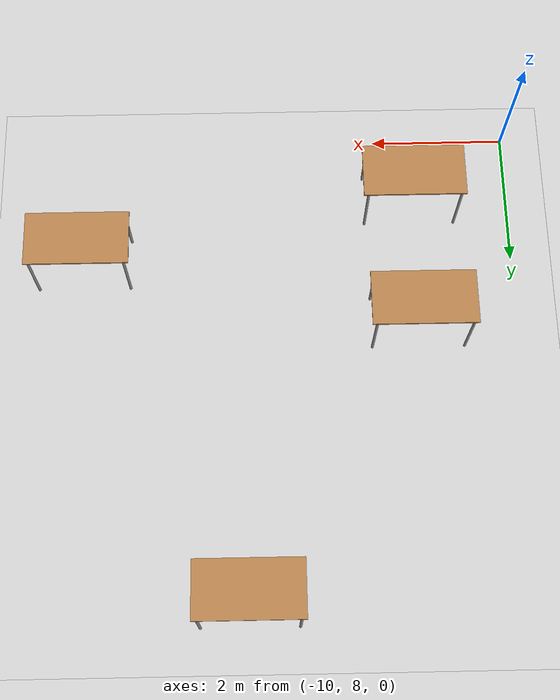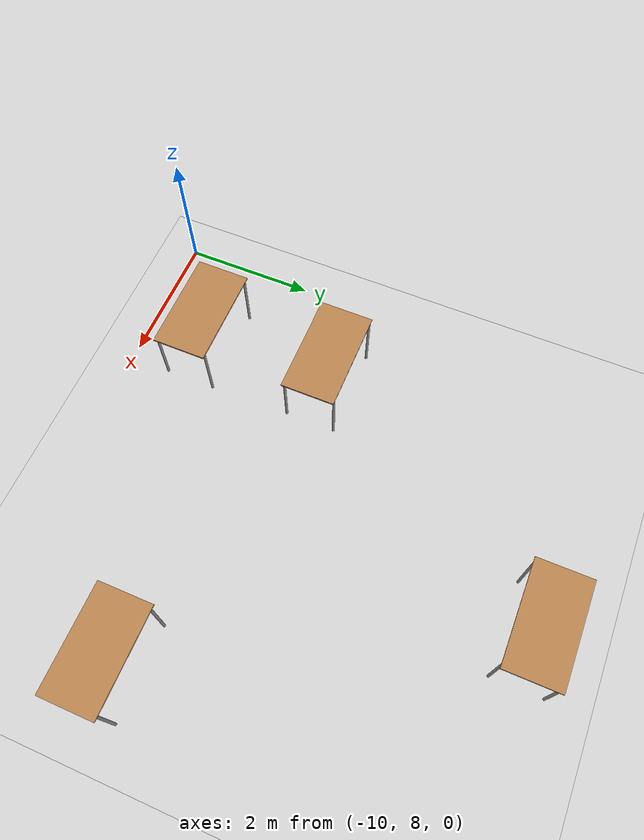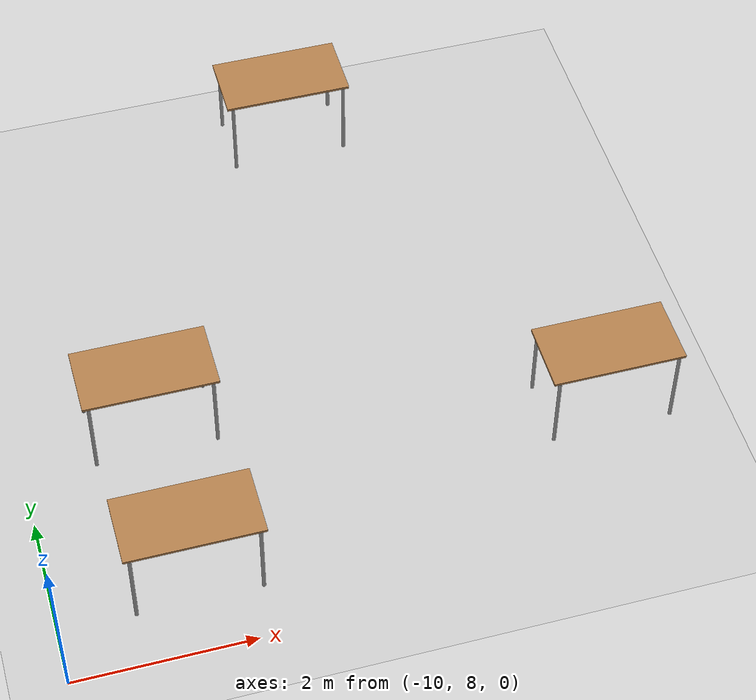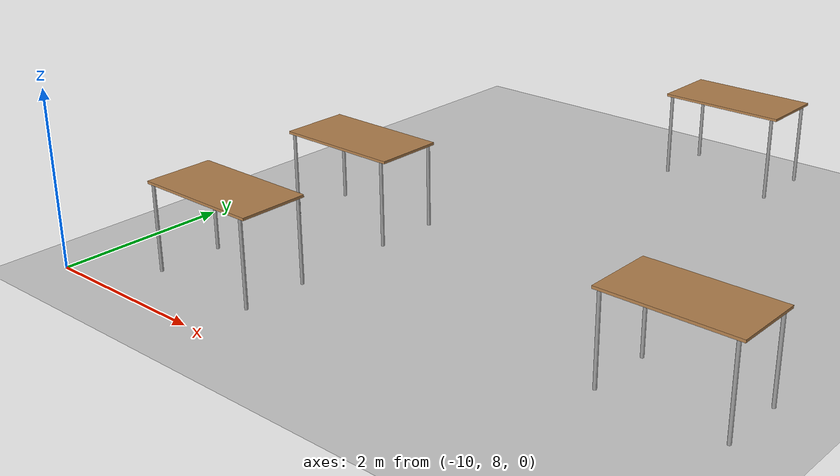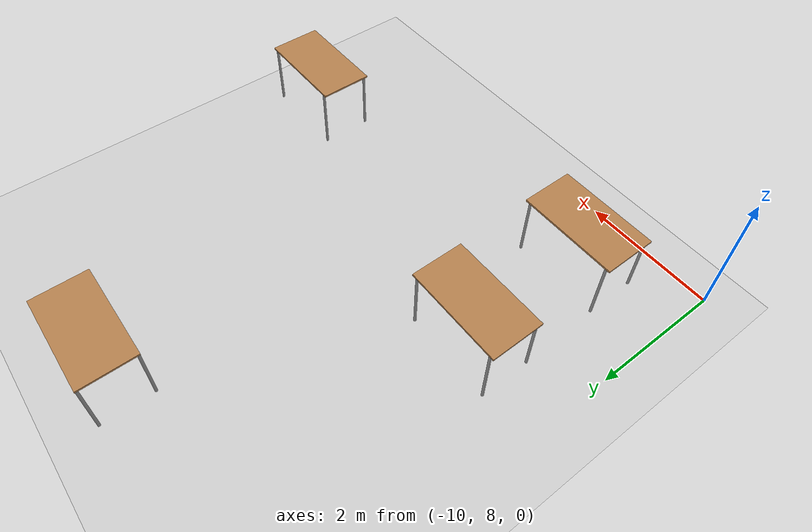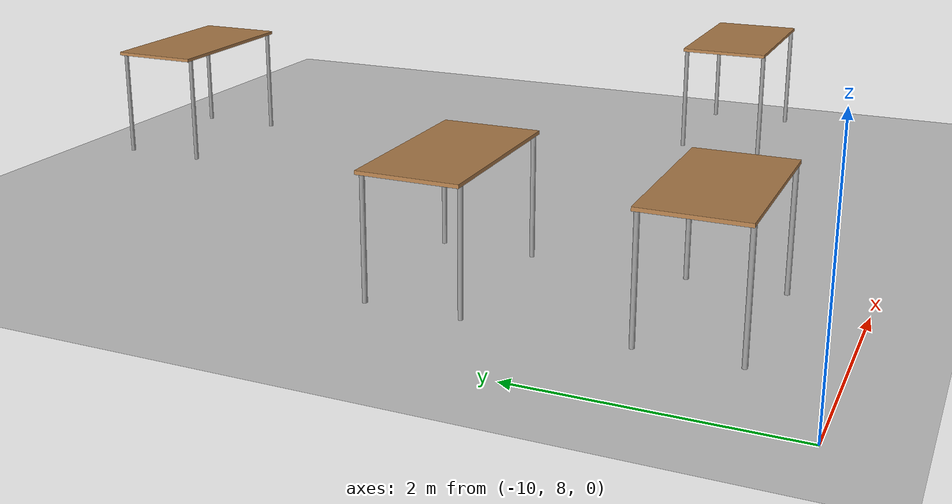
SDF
<sdf version="1.4">
 <world name="default">
  <light name="sun" type="directional">
   <pose>0 0 10 0 -0 0</pose>
   <diffuse>0.8 0.8 0.8 1</diffuse>
   <specular>0.1 0.1 0.1 1</specular>
   <attenuation>
    <range>1000</range>
    <constant>0.9</constant>
    <linear>0.01</linear>
    <quadratic>0.001</quadratic>
   </attenuation>
   <direction>-0.5 0.5 -1</direction>
  </light>
  <model name="ground_plane">
   <static>1</static>
   <link name="link">
    <collision name="collision">
     <geometry><plane><normal>0 0 1</normal><size>100 100</size></plane></geometry>
     <surface><friction><ode><mu>100</mu><mu2>50</mu2></ode></friction></surface>
    </collision>
    <visual name="visual">
     <cast_shadows>0</cast_shadows>
     <geometry><plane><normal>0 0 1</normal><size>100 100</size></plane></geometry>
     <material>
      <script><uri>file://media/materials/scripts/gazebo.material</uri><name>Gazebo/Grey</name></script>
     </material>
    </visual>
    <velocity_decay><linear>0</linear><angular>0</angular></velocity_decay>
   </link>
  </model>
  <physics type="ode">
   <gravity>0 0 -9.8</gravity>
   <real_time_update_rate>1000</real_time_update_rate>
   <max_step_size>0.001</max_step_size>
   <real_time_factor>1</real_time_factor>
  </physics>
  <scene><ambient>0.2 0.2 0.2 1</ambient><background>0.7 0.7 0.7 1</background><shadows>1</shadows></scene>
  <model name="table">
   <static>1</static>
   <link name="link">
    <collision name="surface">
     <pose>0 0 1 0 -0 0</pose>
     <geometry><box><size>1.5 0.8 0.03</size></box></geometry>
    </collision>
    <visual name="visual1">
     <pose>0 0 1 0 -0 0</pose>
     <geometry><box><size>1.5 0.8 0.03</size></box></geometry>
     <material>
      <script><uri>file://media/materials/scripts/gazebo.material</uri><name>Gazebo/Wood</name></script>
     </material>
    </visual>
    <collision name="front_left_leg">
     <pose>0.68 0.38 0.5 0 -0 0</pose>
     <geometry><cylinder><radius>0.02</radius><length>1</length></cylinder></geometry>
    </collision>
    <visual name="front_left_leg">
     <pose>0.68 0.38 0.5 0 -0 0</pose>
     <geometry><cylinder><radius>0.02</radius><length>1</length></cylinder></geometry>
     <material>
      <script><uri>file://media/materials/scripts/gazebo.material</uri><name>Gazebo/Grey</name></script>
     </material>
    </visual>
    <collision name="front_right_leg">
     <pose>0.68 -0.38 0.5 0 -0 0</pose>
     <geometry><cylinder><radius>0.02</radius><length>1</length></cylinder></geometry>
    </collision>
    <visual name="front_right_leg">
     <pose>0.68 -0.38 0.5 0 -0 0</pose>
     <geometry><cylinder><radius>0.02</radius><length>1</length></cylinder></geometry>
     <material>
      <script><uri>file://media/materials/scripts/gazebo.material</uri><name>Gazebo/Grey</name></script>
     </material>
    </visual>
    <collision name="back_right_leg">
     <pose>-0.68 -0.38 0.5 0 -0 0</pose>
     <geometry><cylinder><radius>0.02</radius><length>1</length></cylinder></geometry>
    </collision>
    <visual name="back_right_leg">
     <pose>-0.68 -0.38 0.5 0 -0 0</pose>
     <geometry><cylinder><radius>0.02</radius><length>1</length></cylinder></geometry>
     <material>
      <script><uri>file://media/materials/scripts/gazebo.material</uri><name>Gazebo/Grey</name></script>
     </material>
    </visual>
    <collision name="back_left_leg">
     <pose>-0.68 0.38 0.5 0 -0 0</pose>
     <geometry><cylinder><radius>0.02</radius><length>1</length></cylinder></geometry>
    </collision>
    <visual name="back_left_leg">
     <pose>-0.68 0.38 0.5 0 -0 0</pose>
     <geometry><cylinder><radius>0.02</radius><length>1</length></cylinder></geometry>
     <material>
      <script><uri>file://media/materials/scripts/gazebo.material</uri><name>Gazebo/Grey</name></script>
     </material>
    </visual>
    <velocity_decay><linear>0</linear><angular>0</angular></velocity_decay>
   </link>
   <pose>-8.48867 9 0 0 -0 0</pose>
  </model>
  <model name="table_0">
   <static>1</static>
   <link name="link">
    <collision name="surface">
     <pose>0 0 1 0 -0 0</pose>
     <geometry><box><size>1.5 0.8 0.03</size></box></geometry>
    </collision>
    <visual name="visual1">
     <pose>0 0 1 0 -0 0</pose>
     <geometry><box><size>1.5 0.8 0.03</size></box></geometry>
     <material>
      <script><uri>file://media/materials/scripts/gazebo.material</uri><name>Gazebo/Wood</name></script>
     </material>
    </visual>
    <collision name="front_left_leg">
     <pose>0.68 0.38 0.5 0 -0 0</pose>
     <geometry><cylinder><radius>0.02</radius><length>1</length></cylinder></geometry>
    </collision>
    <visual name="front_left_leg">
     <pose>0.68 0.38 0.5 0 -0 0</pose>
     <geometry><cylinder><radius>0.02</radius><length>1</length></cylinder></geometry>
     <material>
      <script><uri>file://media/materials/scripts/gazebo.material</uri><name>Gazebo/Grey</name></script>
     </material>
    </visual>
    <collision name="front_right_leg">
     <pose>0.68 -0.38 0.5 0 -0 0</pose>
     <geometry><cylinder><radius>0.02</radius><length>1</length></cylinder></geometry>
    </collision>
    <visual name="front_right_leg">
     <pose>0.68 -0.38 0.5 0 -0 0</pose>
     <geometry><cylinder><radius>0.02</radius><length>1</length></cylinder></geometry>
     <material>
      <script><uri>file://media/materials/scripts/gazebo.material</uri><name>Gazebo/Grey</name></script>
     </material>
    </visual>
    <collision name="back_right_leg">
     <pose>-0.68 -0.38 0.5 0 -0 0</pose>
     <geometry><cylinder><radius>0.02</radius><length>1</length></cylinder></geometry>
    </collision>
    <visual name="back_right_leg">
     <pose>-0.68 -0.38 0.5 0 -0 0</pose>
     <geometry><cylinder><radius>0.02</radius><length>1</length></cylinder></geometry>
     <material>
      <script><uri>file://media/materials/scripts/gazebo.material</uri><name>Gazebo/Grey</name></script>
     </material>
    </visual>
    <collision name="back_left_leg">
     <pose>-0.68 0.38 0.5 0 -0 0</pose>
     <geometry><cylinder><radius>0.02</radius><length>1</length></cylinder></geometry>
    </collision>
    <visual name="back_left_leg">
     <pose>-0.68 0.38 0.5 0 -0 0</pose>
     <geometry><cylinder><radius>0.02</radius><length>1</length></cylinder></geometry>
     <material>
      <script><uri>file://media/materials/scripts/gazebo.material</uri><name>Gazebo/Grey</name></script>
     </material>
    </visual>
    <velocity_decay><linear>0</linear><angular>0</angular></velocity_decay>
   </link>
   <pose>-8.52036 11 0 0 -0 0</pose>
  </model>
  <model name="table_1">
   <static>1</static>
   <link name="link">
    <collision name="surface">
     <pose>0 0 1 0 -0 0</pose>
     <geometry><box><size>1.5 0.8 0.03</size></box></geometry>
    </collision>
    <visual name="visual1">
     <pose>0 0 1 0 -0 0</pose>
     <geometry><box><size>1.5 0.8 0.03</size></box></geometry>
     <material>
      <script><uri>file://media/materials/scripts/gazebo.material</uri><name>Gazebo/Wood</name></script>
     </material>
    </visual>
    <collision name="front_left_leg">
     <pose>0.68 0.38 0.5 0 -0 0</pose>
     <geometry><cylinder><radius>0.02</radius><length>1</length></cylinder></geometry>
    </collision>
    <visual name="front_left_leg">
     <pose>0.68 0.38 0.5 0 -0 0</pose>
     <geometry><cylinder><radius>0.02</radius><length>1</length></cylinder></geometry>
     <material>
      <script><uri>file://media/materials/scripts/gazebo.material</uri><name>Gazebo/Grey</name></script>
     </material>
    </visual>
    <collision name="front_right_leg">
     <pose>0.68 -0.38 0.5 0 -0 0</pose>
     <geometry><cylinder><radius>0.02</radius><length>1</length></cylinder></geometry>
    </collision>
    <visual name="front_right_leg">
     <pose>0.68 -0.38 0.5 0 -0 0</pose>
     <geometry><cylinder><radius>0.02</radius><length>1</length></cylinder></geometry>
     <material>
      <script><uri>file://media/materials/scripts/gazebo.material</uri><name>Gazebo/Grey</name></script>
     </material>
    </visual>
    <collision name="back_right_leg">
     <pose>-0.68 -0.38 0.5 0 -0 0</pose>
     <geometry><cylinder><radius>0.02</radius><length>1</length></cylinder></geometry>
    </collision>
    <visual name="back_right_leg">
     <pose>-0.68 -0.38 0.5 0 -0 0</pose>
     <geometry><cylinder><radius>0.02</radius><length>1</length></cylinder></geometry>
     <material>
      <script><uri>file://media/materials/scripts/gazebo.material</uri><name>Gazebo/Grey</name></script>
     </material>
    </visual>
    <collision name="back_left_leg">
     <pose>-0.68 0.38 0.5 0 -0 0</pose>
     <geometry><cylinder><radius>0.02</radius><length>1</length></cylinder></geometry>
    </collision>
    <visual name="back_left_leg">
     <pose>-0.68 0.38 0.5 0 -0 0</pose>
     <geometry><cylinder><radius>0.02</radius><length>1</length></cylinder></geometry>
     <material>
      <script><uri>file://media/materials/scripts/gazebo.material</uri><name>Gazebo/Grey</name></script>
     </material>
    </visual>
    <velocity_decay><linear>0</linear><angular>0</angular></velocity_decay>
   </link>
   <pose>-6 15 0 0 -0 0</pose>
  </model>
  <model name="table_2">
   <static>1</static>
   <link name="link">
    <collision name="surface">
     <pose>0 0 1 0 -0 0</pose>
     <geometry><box><size>1.5 0.8 0.03</size></box></geometry>
    </collision>
    <visual name="visual1">
     <pose>0 0 1 0 -0 0</pose>
     <geometry><box><size>1.5 0.8 0.03</size></box></geometry>
     <material>
      <script><uri>file://media/materials/scripts/gazebo.material</uri><name>Gazebo/Wood</name></script>
     </material>
    </visual>
    <collision name="front_left_leg">
     <pose>0.68 0.38 0.5 0 -0 0</pose>
     <geometry><cylinder><radius>0.02</radius><length>1</length></cylinder></geometry>
    </collision>
    <visual name="front_left_leg">
     <pose>0.68 0.38 0.5 0 -0 0</pose>
     <geometry><cylinder><radius>0.02</radius><length>1</length></cylinder></geometry>
     <material>
      <script><uri>file://media/materials/scripts/gazebo.material</uri><name>Gazebo/Grey</name></script>
     </material>
    </visual>
    <collision name="front_right_leg">
     <pose>0.68 -0.38 0.5 0 -0 0</pose>
     <geometry><cylinder><radius>0.02</radius><length>1</length></cylinder></geometry>
    </collision>
    <visual name="front_right_leg">
     <pose>0.68 -0.38 0.5 0 -0 0</pose>
     <geometry><cylinder><radius>0.02</radius><length>1</length></cylinder></geometry>
     <material>
      <script><uri>file://media/materials/scripts/gazebo.material</uri><name>Gazebo/Grey</name></script>
     </material>
    </visual>
    <collision name="back_right_leg">
     <pose>-0.68 -0.38 0.5 0 -0 0</pose>
     <geometry><cylinder><radius>0.02</radius><length>1</length></cylinder></geometry>
    </collision>
    <visual name="back_right_leg">
     <pose>-0.68 -0.38 0.5 0 -0 0</pose>
     <geometry><cylinder><radius>0.02</radius><length>1</length></cylinder></geometry>
     <material>
      <script><uri>file://media/materials/scripts/gazebo.material</uri><name>Gazebo/Grey</name></script>
     </material>
    </visual>
    <collision name="back_left_leg">
     <pose>-0.68 0.38 0.5 0 -0 0</pose>
     <geometry><cylinder><radius>0.02</radius><length>1</length></cylinder></geometry>
    </collision>
    <visual name="back_left_leg">
     <pose>-0.68 0.38 0.5 0 -0 0</pose>
     <geometry><cylinder><radius>0.02</radius><length>1</length></cylinder></geometry>
     <material>
      <script><uri>file://media/materials/scripts/gazebo.material</uri><name>Gazebo/Grey</name></script>
     </material>
    </visual>
    <velocity_decay><linear>0</linear><angular>0</angular></velocity_decay>
   </link>
   <pose>-3.58846 10 0 0 -0 0</pose>
  </model>
  <plugin filename="libcollision_map_creator.so" name="collision_map_creator"/>
 </world>
</sdf>
